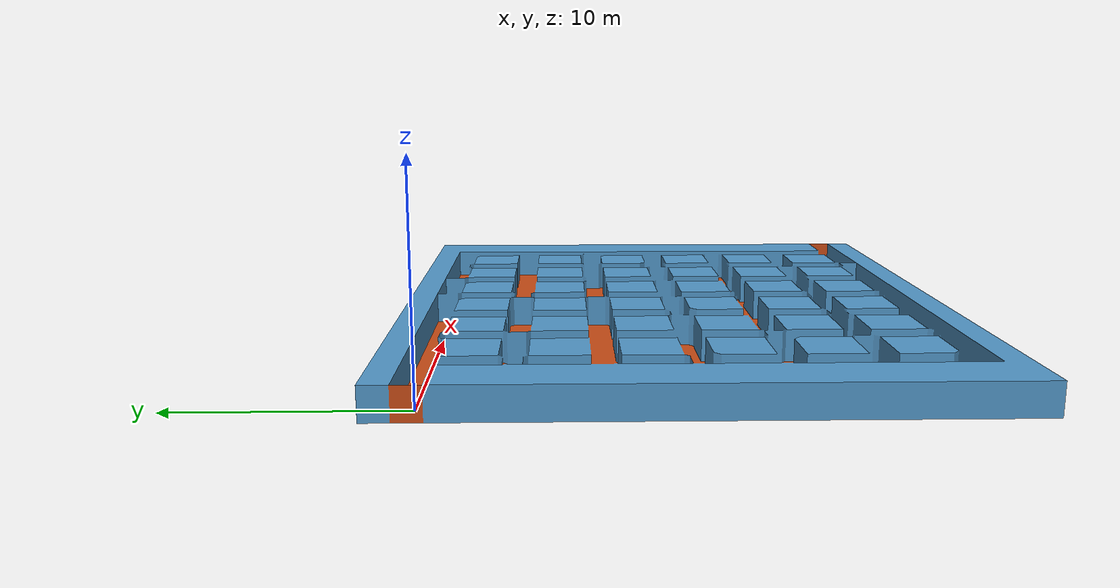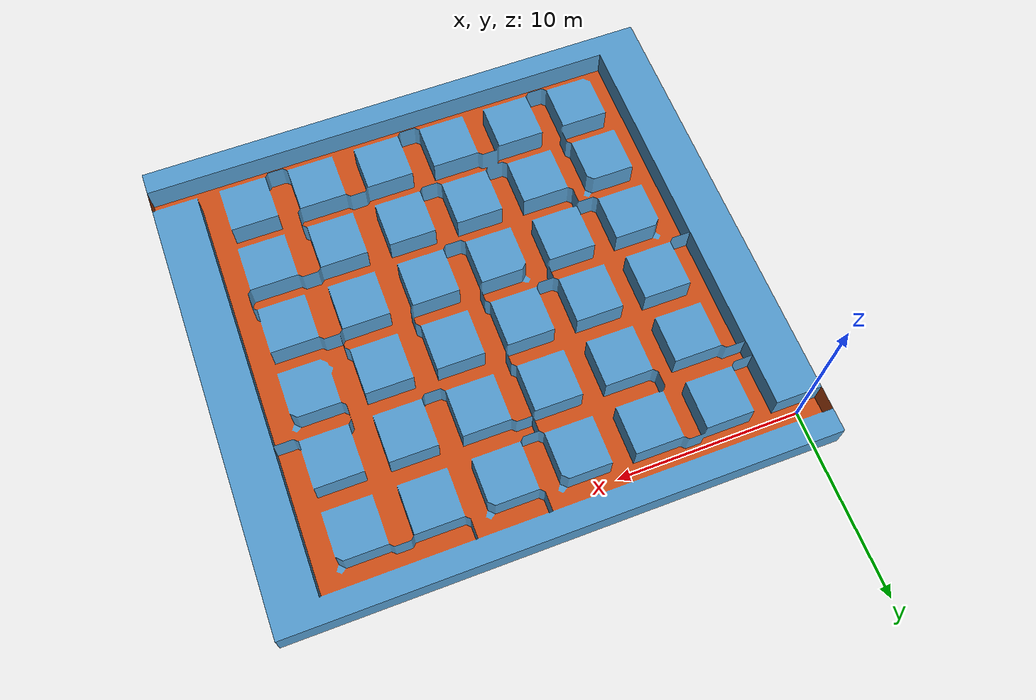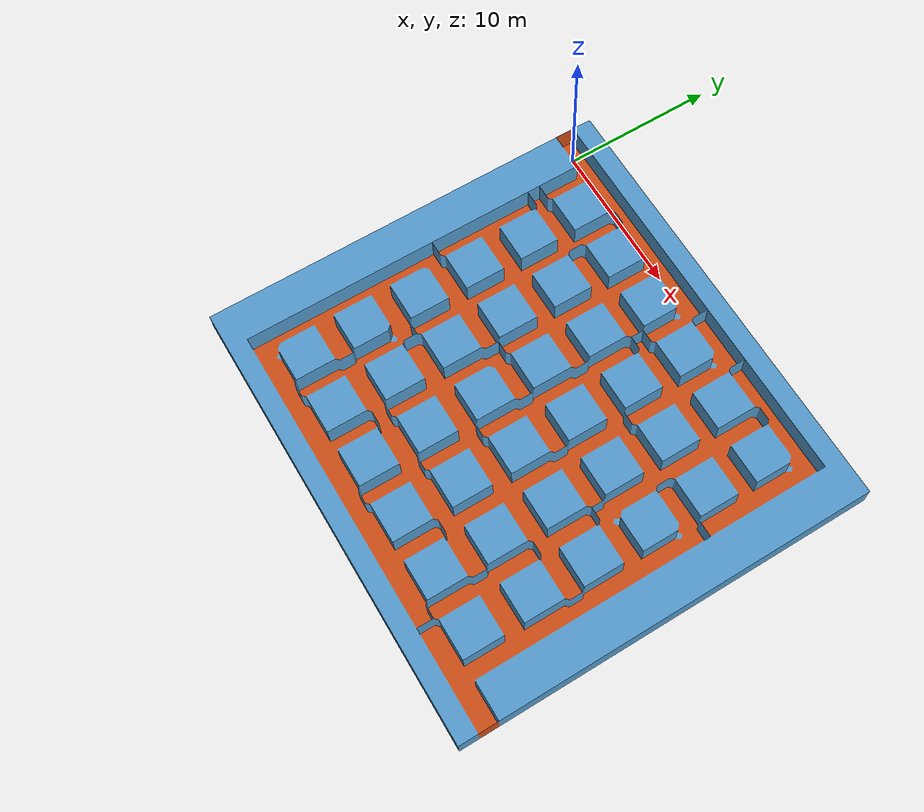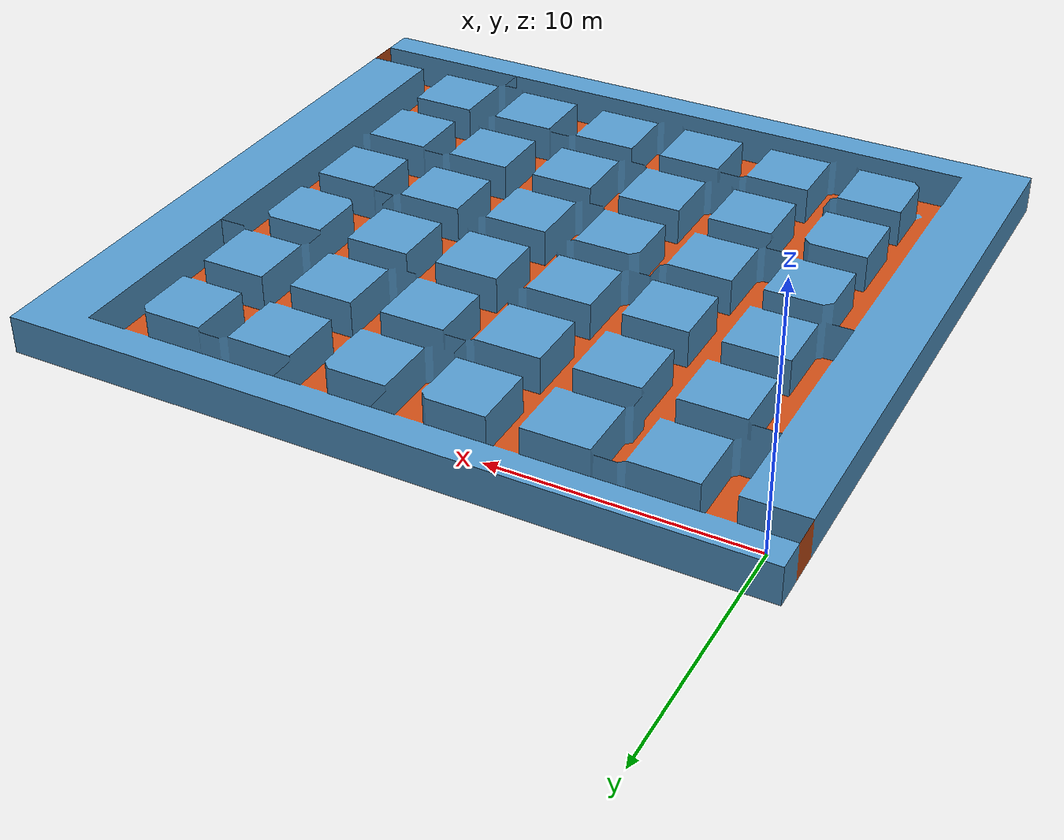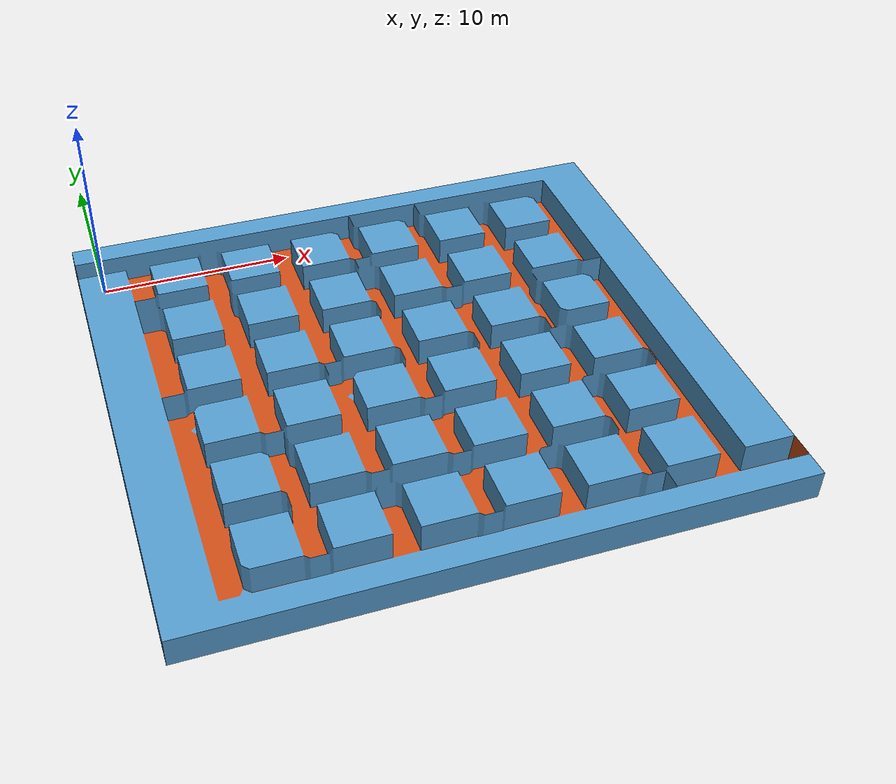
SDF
<sdf version='1.5'>
  <!-- Draw Model -->
  <model name="mazev12">
    <static>true</static>
    <link name="mazev12">
      <collision name="collision">
        <geometry>
          <mesh>
            <uri>model://turtlebot3_maze2/mazev12/mazev12.stl</uri>
          </mesh>
        </geometry>
      </collision>

      <visual name="visual">
        <geometry>
          <mesh>
            <uri>model://turtlebot3_maze2/mazev12/mazev12.dae</uri>
          </mesh>
        </geometry>
      </visual>
    </link>
  </model>
</sdf>
